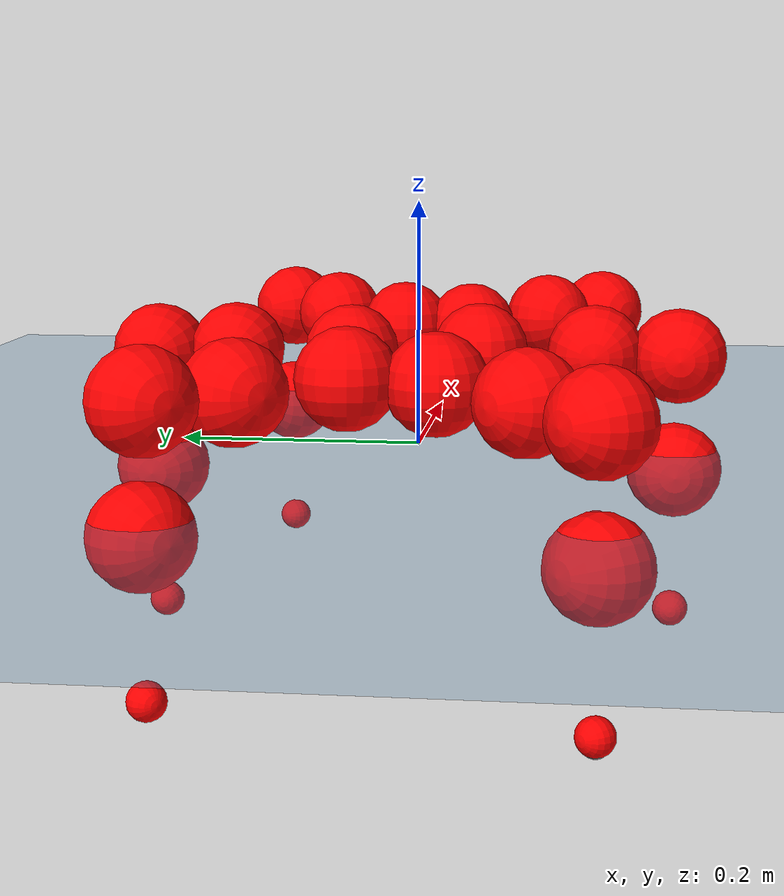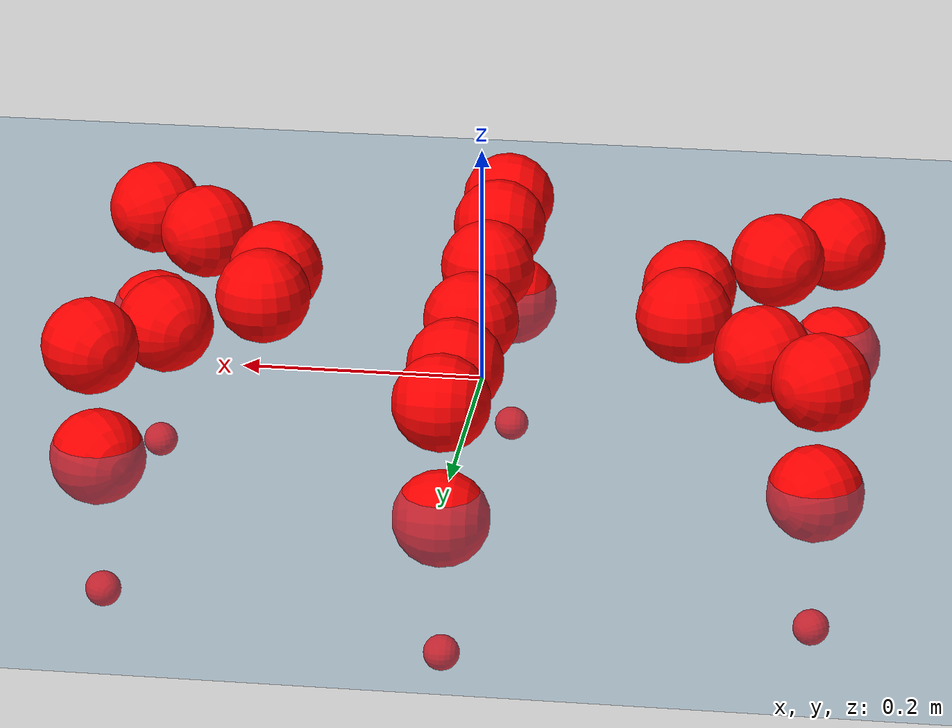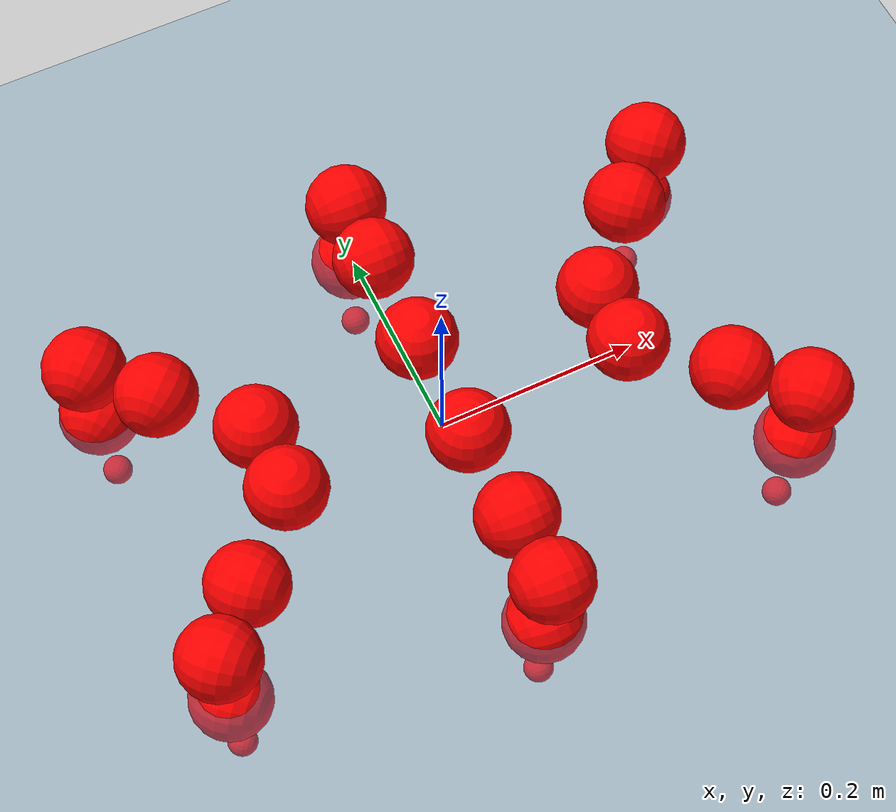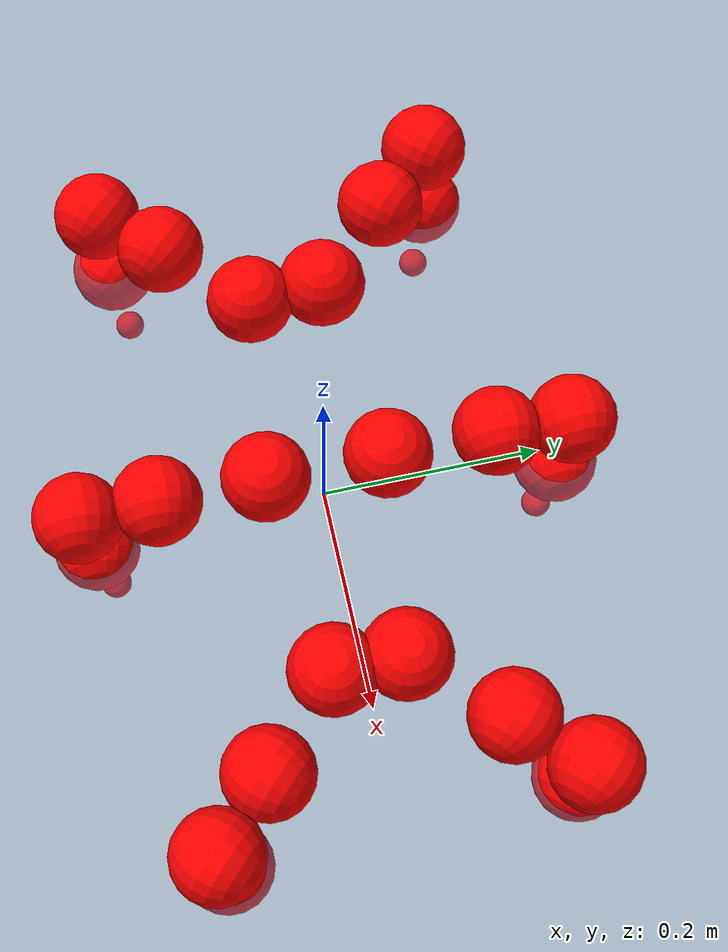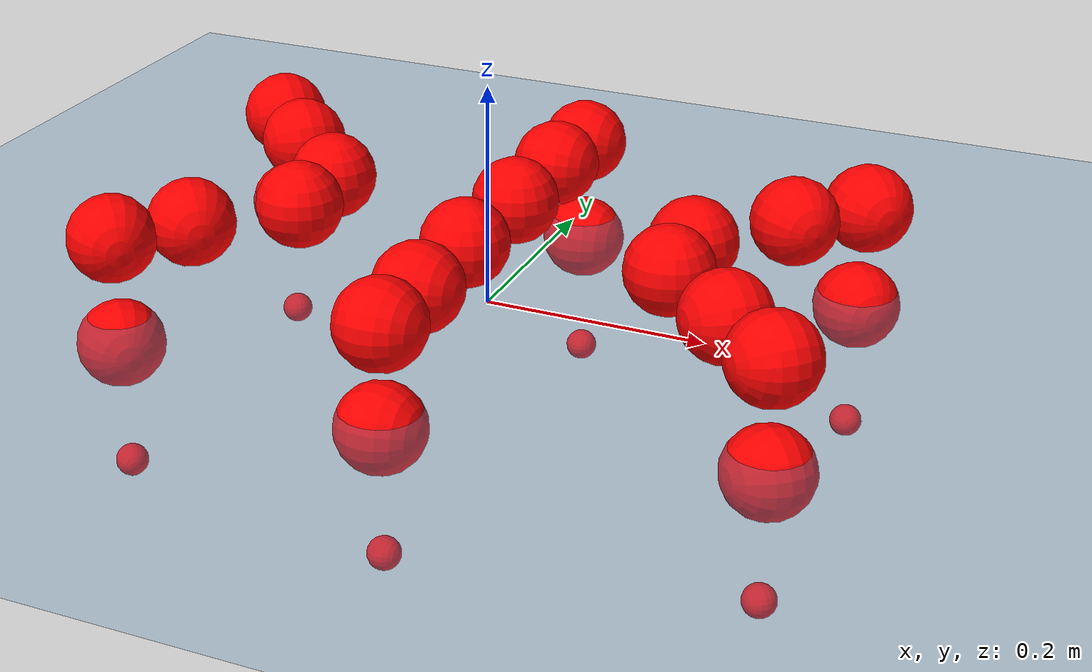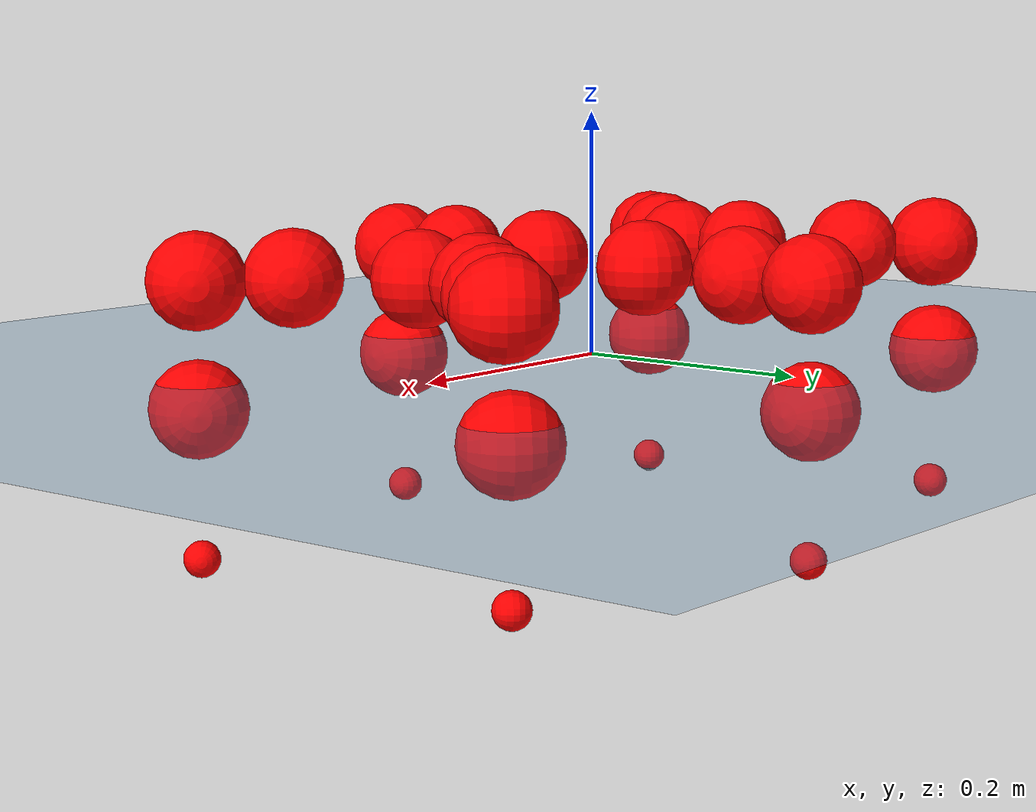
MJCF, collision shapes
<mujoco model="Golem">
  <compiler angle="radian" assetdir="assets" balanceinertia="true" inertiafromgeom="false"/>

  <option timestep="0.005" density="1.2" viscosity="2e-05"/>

  <size nkey="1"/>

  <visual>
    <quality shadowsize="8192"/>
    <map shadowclip="0.5"/>
  </visual>

  <default>
    <default class="/">
      <joint armature="0.01" damping="0.01" frictionloss="0.01"/>
      <geom contype="0" conaffinity="0" group="1" solref="-1000 -80"/>
      <site size="0.01 0.005 0.005" group="5"/>
      <general forcelimited="true" biastype="affine" gainprm="25" biasprm="0 -25 -0.5"/>
      <default class="visual">
        <geom type="mesh" group="2"/>
      </default>
      <default class="collision">
        <geom group="3"/>
      </default>
      <default class="foot">
        <geom size="0.01 0 0" condim="6" group="4" priority="1" solimp="0.015 1 0.01"/>
      </default>
      <default class="reward_collision_sphere">
        <geom group="5" rgba="1 0 0 1"/>
      </default>
    </default>
  </default>

  <asset>
    <texture type="skybox" colorspace="auto" name="//unnamed_texture_0" builtin="gradient" rgb1="0.95 0.95 0.95" rgb2="0.95 0.95 0.95" width="100" height="600"/>
    <texture type="2d" colorspace="auto" name="texplane" builtin="checker" rgb1="0.345 0.575 0.748" rgb2="0.345 0.575 0.748" markrgb="1 1 1" width="512" height="512"/>
    <material name="MatPlane" class="/" texture="texplane" texuniform="true" texrepeat="2 2" specular="0.9"/>
    <mesh name="body" class="/" file="body.stl" scale="0.001 0.001 0.001"/>
    <mesh name="coxa" class="/" file="coxa.stl" scale="0.001 0.001 0.001"/>
    <mesh name="femur" class="/" file="femur.stl" scale="0.001 0.001 0.001"/>
    <mesh name="tibia" class="/" file="tibia.stl" scale="0.001 0.001 0.001"/>
    <mesh name="tarsus" class="/" file="tarsus.stl" scale="0.001 0.001 0.001"/>
  </asset>

  <worldbody>
    <geom name="floor" class="/" size="100 100 0.125" type="plane" group="0" material="MatPlane"/>
    <light name="toplight_shadow" class="/" pos="0 0 5" dir="0.0990148 0.0990148 -0.990148" type="directional" ambient="0.04 0.04 0.04" diffuse="0.55 0.55 0.55" specular="0.12 0.12 0.12"/>
    <light name="toplight_fill" class="/" pos="0 0 5" dir="0.0990148 0.0990148 -0.990148" type="directional" castshadow="false" ambient="0.04 0.04 0.04" diffuse="0.3 0.3 0.3" specular="0.08 0.08 0.08"/>
    <body name="trunk" pos="0.00276512 0.000321531 0.00247373" quat="1 -5.27151e-05 0.000263712 -0.000415812">
      <inertial pos="-0.00220019 -0.00221974 -0.000115541" quat="1 -0.000836527 0.000258658 -6.54112e-05" mass="3.53916" diaginertia="0.0157527 0.00122739 0.0224726"/>
      <joint name="//unnamed_joint_0" type="free"/>
      <geom name="//unnamed_geom_1" class="/" pos="0 0 0.0749132" quat="1 0 0 0" type="mesh" rgba="0.9 0.9 0.9 1" mesh="body"/>
      <site name="imu" class="/" pos="0.140752 -0.0112478 0.115466" size="0.00975631"/>
      <camera name="track" class="/" pos="0 -1.31448 0" quat="0.707107 0.707107 0 0" mode="trackcom"/>
      <camera name="ego_camera" class="/" pos="0.142887 0 0.117052" quat="-0.5 -0.5 0.5 0.5"/>
      <body name="coxa_RR" pos="-0.193792 -0.0554508 0.0742555" quat="0.382832 -0.000207789 0.000215551 -0.923818">
        <inertial pos="-0.000274376 0.000690665 -0.000178288" quat="0.99991 0.000531502 -0.00542663 0.0122956" mass="0.191045" diaginertia="0.0164067 0.00119852 0.022"/>
        <joint name="coxa_joint_RR" class="/" pos="0 0 0" axis="-0.00042565 -0.000186249 -1" stiffness="0.00577088" range="-3.10625 3.14812" armature="0.00978791" damping="0.0125729" frictionloss="0.00928654"/>
        <geom name="//unnamed_geom_2" class="/" type="mesh" rgba="0.2 0.2 0.2 1" mesh="coxa"/>
        <geom name="//unnamed_geom_3" class="reward_collision_sphere" size="0.0390252" pos="-0.0329739 0 0"/>
        <body name="femur_RR" pos="0.0642914 0.00159805 -0.00109776" quat="0.499928 -0.499894 0.500094 0.500084">
          <inertial pos="-0.00161357 0.00113067 -0.00192486" quat="0.999999 0.000992666 -0.000287253 -0.000652111" mass="0.186571" diaginertia="0.0161082 0.00122822 0.0220331"/>
          <joint name="femur_joint_RR" class="/" pos="0 0 0" axis="0.00337662 -0.00108613 -0.999994" range="-3.18355 3.19019" armature="0.00873083" damping="0.00309913" frictionloss="0.00969379"/>
          <geom name="//unnamed_geom_4" class="/" type="mesh" rgba="0.9 0.9 0.9 1" mesh="femur"/>
          <geom name="//unnamed_geom_5" class="reward_collision_sphere" size="0.0390252"/>
          <body name="tibia_RR" pos="0.00364419 -0.0702845 0.00197252" quat="0.000216268 1 0.000187429 -2.40351e-06">
            <inertial pos="0.00261398 -0.00126075 0.00186586" quat="0.999914 0.00788034 0.00683198 -0.00789556" mass="0.188214" diaginertia="0.0167824 0.0012909 0.0224267"/>
            <joint name="tibia_joint_RR" class="/" pos="0 0 0" axis="0.00578942 0.00817243 0.99995" range="-3.19484 3.17046" armature="0.00897401" damping="0.0189466" frictionloss="0.0102921"/>
            <geom name="//unnamed_geom_6" class="/" type="mesh" rgba="0.2 0.2 0.2 1" mesh="tibia"/>
            <geom name="//unnamed_geom_7" class="reward_collision_sphere" size="0.0390252"/>
            <body name="tarsus_RR" pos="0.0994318 -0.000307465 -0.000803825" quat="1 7.76711e-05 1.53748e-05 7.35449e-06">
              <inertial pos="0.0683178 -0.00133083 -0.00111982" quat="0.494846 0.494862 0.498501 0.511602" mass="0.183416" diaginertia="0.0155576 0.00124519 0.0221153"/>
              <joint name="tarsus_joint_RR" class="/" pos="0 0 0" axis="0.00479832 -0.00177111 0.999987" range="-3.14875 3.13333" armature="0.0110979" damping="0.0403951" frictionloss="0.0110718"/>
              <geom name="//unnamed_geom_8" class="/" type="mesh" rgba="0.9 0.9 0.9 1" mesh="tarsus"/>
              <geom name="foot_1" class="foot" size="0.0106265" pos="0.123103 0 0" quat="0 -0.707107 0 0.707107"/>
              <geom name="//unnamed_geom_10" class="reward_collision_sphere" size="0.0390252"/>
              <geom name="//unnamed_geom_11" class="reward_collision_sphere" size="0.0146345" pos="0.118157 0 0"/>
              <site name="foot_1" class="foot" pos="0.123103 0 0" quat="0 -0.707107 0 0.707107" size="0.00975631"/>
            </body>
          </body>
        </body>
      </body>
      <body name="coxa_RM" pos="-0.00104892 -0.0842403 0.0758661" quat="0.707126 4.34505e-05 1.32656e-05 -0.707088">
        <inertial pos="-0.000394418 0.00291469 0.0028993" quat="0.999989 0.00137278 -0.00324905 -0.00308432" mass="0.185668" diaginertia="0.0164795 0.00127437 0.0225488"/>
        <joint name="coxa_joint_RM" class="/" pos="0 0 0" axis="-0.0101783 9.72651e-06 -0.999948" stiffness="0.00440306" range="-3.17435 3.08989" armature="0.0102233" damping="0.0293102" frictionloss="0.0103459"/>
        <geom name="//unnamed_geom_12" class="/" type="mesh" rgba="0.2 0.2 0.2 1" mesh="coxa"/>
        <geom name="//unnamed_geom_13" class="reward_collision_sphere" size="0.0390252" pos="-0.0329739 0 0"/>
        <body name="femur_RM" pos="0.0611185 0.00194118 -0.000395569" quat="0.499742 -0.499751 0.500004 0.500504">
          <inertial pos="0.000478922 -0.00282666 0.00160815" quat="0.999946 -0.00204823 0.00588006 0.0083451" mass="0.185584" diaginertia="0.0159406 0.00118224 0.0219658"/>
          <joint name="femur_joint_RM" class="/" pos="0 0 0" axis="-0.0107546 -0.00122586 -0.999941" range="-3.09716 3.08533" armature="0.00958057" damping="0.00213842" frictionloss="0.0101801"/>
          <geom name="//unnamed_geom_14" class="/" type="mesh" rgba="0.9 0.9 0.9 1" mesh="femur"/>
          <geom name="//unnamed_geom_15" class="reward_collision_sphere" size="0.0390252"/>
          <body name="tibia_RM" pos="0.00210695 -0.0678 0.000390043" quat="-0.000138011 1 0.000200112 -0.000134652">
            <inertial pos="0.000667018 -0.000112708 0.00283849" quat="0.999992 0.00315126 0.00184333 0.00132618" mass="0.183036" diaginertia="0.0161637 0.00122195 0.0220381"/>
            <joint name="tibia_joint_RM" class="/" pos="0 0 0" axis="0.00101546 0.00316101 0.999994" range="-3.15369 3.19481" armature="0.0111599" damping="0.00749301" frictionloss="0.0109882"/>
            <geom name="//unnamed_geom_16" class="/" type="mesh" rgba="0.2 0.2 0.2 1" mesh="tibia"/>
            <geom name="//unnamed_geom_17" class="reward_collision_sphere" size="0.0390252"/>
            <body name="tarsus_RM" pos="0.093714 -0.00142708 0.00292199" quat="0.999999 -0.000420618 -0.000888946 0.000385135">
              <inertial pos="0.0666573 0.00082499 -0.000980148" quat="0.500462 0.500137 0.499365 0.500036" mass="0.190414" diaginertia="0.017057 0.00123917 0.0224445"/>
              <joint name="tarsus_joint_RM" class="/" pos="0 0 0" axis="-0.00289703 -0.0081415 0.999963" range="-3.14313 3.15935" armature="0.00960511" damping="0.0102676" frictionloss="0.00996138"/>
              <geom name="//unnamed_geom_18" class="/" type="mesh" rgba="0.9 0.9 0.9 1" mesh="tarsus"/>
              <geom name="foot_2" class="foot" size="0.00925693" pos="0.123103 0 0" quat="0 -0.707107 0 0.707107"/>
              <geom name="//unnamed_geom_20" class="reward_collision_sphere" size="0.0390252"/>
              <geom name="//unnamed_geom_21" class="reward_collision_sphere" size="0.0146345" pos="0.118157 0 0"/>
              <site name="foot_2" class="foot" pos="0.123103 0 0" quat="0 -0.707107 0 0.707107" size="0.00975631"/>
            </body>
          </body>
        </body>
      </body>
      <body name="coxa_RF" pos="0.196684 -0.0530946 0.0742043" quat="0.923907 -7.897e-06 -0.000337508 -0.382617">
        <inertial pos="0.00095229 0.000636718 0.000432433" quat="0.999993 -0.00128821 -0.00294165 0.00189585" mass="0.187955" diaginertia="0.0159918 0.00125475 0.0218533"/>
        <joint name="coxa_joint_RF" class="/" pos="0 0 0" axis="-0.00156202 -0.00142625 -0.999998" range="-3.18704 3.12822" armature="0.00829968" damping="0.0209153" frictionloss="0.00975528"/>
        <geom name="//unnamed_geom_22" class="/" type="mesh" rgba="0.2 0.2 0.2 1" mesh="coxa"/>
        <geom name="//unnamed_geom_23" class="reward_collision_sphere" size="0.0390252" pos="-0.0329739 0 0"/>
        <body name="femur_RF" pos="0.0647562 0.00188451 0.0019844" quat="0.49999 -0.500067 0.499981 0.499962">
          <inertial pos="0.000440763 -0.00186512 -0.00141898" quat="0.999928 -0.0118941 0.000564464 -0.00147793" mass="0.179563" diaginertia="0.0153501 0.00119771 0.022264"/>
          <joint name="femur_joint_RF" class="/" pos="0 0 0" axis="-0.00207739 -0.00201977 -0.999996" range="-3.12434 3.15102" armature="0.0106968" damping="0" frictionloss="0.0110873"/>
          <geom name="//unnamed_geom_24" class="/" type="mesh" rgba="0.9 0.9 0.9 1" mesh="femur"/>
          <geom name="//unnamed_geom_25" class="reward_collision_sphere" size="0.0390252"/>
          <body name="tibia_RF" pos="0.00112576 -0.0740331 0.00208351" quat="-0.000127504 1 -8.88751e-05 4.43178e-05">
            <inertial pos="0.00257641 0.00234669 -0.00134884" quat="0.999926 0.0109666 0.00513817 0.000656459" mass="0.185619" diaginertia="0.015712 0.00118252 0.0222692"/>
            <joint name="tibia_joint_RF" class="/" pos="0 0 0" axis="0.00203952 0.000537588 0.999998" range="-3.13543 3.10123" armature="0.0109825" damping="0" frictionloss="0.00911812"/>
            <geom name="//unnamed_geom_26" class="/" type="mesh" rgba="0.2 0.2 0.2 1" mesh="tibia"/>
            <geom name="//unnamed_geom_27" class="reward_collision_sphere" size="0.0390252"/>
            <body name="tarsus_RF" pos="0.0991782 -0.000198884 -0.00226649" quat="1 -4.28246e-05 9.17541e-05 -1.70878e-05">
              <inertial pos="0.0669711 0.000393638 -0.00196737" quat="0.500074 0.496959 0.504975 0.497953" mass="0.183772" diaginertia="0.0161718 0.0012508 0.0222573"/>
              <joint name="tarsus_joint_RF" class="/" pos="0 0 0" axis="-0.00650824 0.00236993 0.999976" stiffness="0.0161415" range="-3.14492 3.13291" armature="0.00890995" damping="0.00781086" frictionloss="0.00967599"/>
              <geom name="//unnamed_geom_28" class="/" type="mesh" rgba="0.9 0.9 0.9 1" mesh="tarsus"/>
              <geom name="foot_3" class="foot" size="0.00877752" pos="0.123103 0 0" quat="0 -0.707107 0 0.707107"/>
              <geom name="//unnamed_geom_30" class="reward_collision_sphere" size="0.0390252"/>
              <geom name="//unnamed_geom_31" class="reward_collision_sphere" size="0.0146345" pos="0.118157 0 0"/>
              <site name="foot_3" class="foot" pos="0.123103 0 0" quat="0 -0.707107 0 0.707107" size="0.00975631"/>
            </body>
          </body>
        </body>
      </body>
      <body name="coxa_LR" pos="-0.195066 0.057093 0.0772075" quat="0.381998 -0.000648636 0.000923013 0.924162">
        <inertial pos="-0.00234719 0.000637835 0.00366003" quat="0.999977 -0.00604694 0.00219794 -0.00234819" mass="0.189365" diaginertia="0.0163851 0.00123367 0.0218696"/>
        <joint name="coxa_joint_LR" class="/" pos="0 0 0" axis="0.00947139 0.011498 -0.999889" range="-3.19342 3.1317" armature="0.00964876" damping="0.019664" frictionloss="0.00923473"/>
        <geom name="//unnamed_geom_32" class="/" type="mesh" rgba="0.2 0.2 0.2 1" mesh="coxa"/>
        <geom name="//unnamed_geom_33" class="reward_collision_sphere" size="0.0390252" pos="-0.0329739 0 0"/>
        <body name="femur_LR" pos="0.0645273 -0.000556189 -0.000100162" quat="0.499659 -0.499396 0.500291 0.500653">
          <inertial pos="0.00270556 -0.000270043 0.00187315" quat="0.999999 0.000750323 -0.000652286 0.00103577" mass="0.177358" diaginertia="0.0157085 0.00121037 0.0212822"/>
          <joint name="femur_joint_LR" class="/" pos="0 0 0" axis="-0.013065 -0.00685261 0.999891" range="-3.16261 3.1115" armature="0.0108628" damping="0" frictionloss="0.0095274"/>
          <geom name="//unnamed_geom_34" class="/" type="mesh" rgba="0.9 0.9 0.9 1" mesh="femur"/>
          <geom name="//unnamed_geom_35" class="reward_collision_sphere" size="0.0390252"/>
          <body name="tibia_LR" pos="-0.00163185 -0.0719308 -0.00229572" quat="0.00114328 0.999999 -0.00046493 -0.000611917">
            <inertial pos="-0.000182312 0.000801412 0.00182783" quat="0.999922 -0.00157254 0.0122329 0.00175372" mass="0.184025" diaginertia="0.0162734 0.00125342 0.0218049"/>
            <joint name="tibia_joint_LR" class="/" pos="0 0 0" axis="-0.00181512 0.00390091 -0.999991" range="-3.16675 3.18933" armature="0.00863889" damping="0.0247707" frictionloss="0.0109175"/>
            <geom name="//unnamed_geom_36" class="/" type="mesh" rgba="0.2 0.2 0.2 1" mesh="tibia"/>
            <geom name="//unnamed_geom_37" class="reward_collision_sphere" size="0.0390252"/>
            <body name="tarsus_LR" pos="0.0945726 0.00165448 0.00320726" quat="1 -2.6728e-05 0.000391562 4.50503e-05">
              <inertial pos="0.0657048 -6.44404e-05 -0.000256535" quat="0.505451 0.498305 0.491434 0.504683" mass="0.18846" diaginertia="0.0169061 0.00128235 0.0232814"/>
              <joint name="tarsus_joint_LR" class="/" pos="0 0 0" axis="0.000118072 -0.000131993 -1" stiffness="0.0036844" range="-3.15274 3.12584" armature="0.00970306" damping="0.0345676" frictionloss="0.00956758"/>
              <geom name="//unnamed_geom_38" class="/" type="mesh" rgba="0.9 0.9 0.9 1" mesh="tarsus"/>
              <geom name="foot_4" class="foot" size="0.00958065" pos="0.123103 0 0" quat="0.707107 0 -0.707107 0"/>
              <geom name="//unnamed_geom_40" class="reward_collision_sphere" size="0.0390252"/>
              <geom name="//unnamed_geom_41" class="reward_collision_sphere" size="0.0146345" pos="0.118157 0 0"/>
              <site name="foot_4" class="foot" pos="0.123103 0 0" quat="0.707107 0 -0.707107 0" size="0.00975631"/>
            </body>
          </body>
        </body>
      </body>
      <body name="coxa_LM" pos="-0.00119095 0.088635 0.0735436" quat="0.706966 -0.000375562 -0.00116021 0.707247">
        <inertial pos="-0.000607051 -0.00250301 -0.00163006" quat="1 -0.000105054 0.000350086 0.000210761" mass="0.18694" diaginertia="0.0158747 0.00123532 0.0220548"/>
        <joint name="coxa_joint_LM" class="/" pos="0 0 0" axis="0.00206625 -0.00237977 -0.999995" range="-3.14255 3.13691" armature="0.00967312" damping="0.0148178" frictionloss="0.00864927"/>
        <geom name="//unnamed_geom_42" class="/" type="mesh" rgba="0.2 0.2 0.2 1" mesh="coxa"/>
        <geom name="//unnamed_geom_43" class="reward_collision_sphere" size="0.0390252" pos="-0.0329739 0 0"/>
        <body name="femur_LM" pos="0.0632589 9.85532e-05 0.000665328" quat="0.500119 -0.499995 0.499981 0.499904">
          <inertial pos="0.00158924 0.00252346 0.000275218" quat="0.999989 7.44488e-05 0.00164972 -0.00439804" mass="0.186041" diaginertia="0.0166152 0.00122349 0.0212307"/>
          <joint name="femur_joint_LM" class="/" pos="0 0 0" axis="0.00100652 0.0109794 0.999939" stiffness="0.00237911" range="-3.12789 3.10819" armature="0.0112581" damping="0" frictionloss="0.0107993"/>
          <geom name="//unnamed_geom_44" class="/" type="mesh" rgba="0.9 0.9 0.9 1" mesh="femur"/>
          <geom name="//unnamed_geom_45" class="reward_collision_sphere" size="0.0390252"/>
          <body name="tibia_LM" pos="0.00206449 -0.0670113 -0.001943" quat="0.000140177 1 -8.80319e-05 9.07311e-05">
            <inertial pos="-0.00226253 0.000244243 -0.00111403" quat="0.99998 0.00352963 0.00192163 -0.00484501" mass="0.188852" diaginertia="0.0158166 0.00124474 0.0216682"/>
            <joint name="tibia_joint_LM" class="/" pos="0 0 0" axis="0.00638181 0.00372299 -0.999973" stiffness="0.00553691" range="-3.12345 3.13168" armature="0.0110677" damping="0.00446186" frictionloss="0.0097603"/>
            <geom name="//unnamed_geom_46" class="/" type="mesh" rgba="0.2 0.2 0.2 1" mesh="tibia"/>
            <geom name="//unnamed_geom_47" class="reward_collision_sphere" size="0.0390252"/>
            <body name="tarsus_LM" pos="0.0993309 0.000152824 0.000205387" quat="0.999999 7.05094e-05 -0.000183101 -0.0012338">
              <inertial pos="0.0627605 -0.00102216 -0.00101382" quat="0.50094 0.49831 0.501378 0.499367" mass="0.181981" diaginertia="0.0153551 0.00116704 0.0207015"/>
              <joint name="tarsus_joint_LM" class="/" pos="0 0 0" axis="0.00185977 0.00173443 -0.999997" stiffness="0.0111278" range="-3.12366 3.12796" armature="0.00837622" damping="0.0296325" frictionloss="0.00989736"/>
              <geom name="//unnamed_geom_48" class="/" type="mesh" rgba="0.9 0.9 0.9 1" mesh="tarsus"/>
              <geom name="foot_5" class="foot" size="0.00952624" pos="0.123103 0 0" quat="0.707107 0 -0.707107 0"/>
              <geom name="//unnamed_geom_50" class="reward_collision_sphere" size="0.0390252"/>
              <geom name="//unnamed_geom_51" class="reward_collision_sphere" size="0.0146345" pos="0.118157 0 0"/>
              <site name="foot_5" class="foot" pos="0.123103 0 0" quat="0.707107 0 -0.707107 0" size="0.00975631"/>
            </body>
          </body>
        </body>
      </body>
      <body name="coxa_LF" pos="0.19677 0.0546371 0.0750102" quat="0.923885 1.04113e-05 1.22747e-05 0.38267">
        <inertial pos="0.00267101 -0.00196188 0.00257746" quat="0.999981 0.00463154 0.00384297 0.00111768" mass="0.187282" diaginertia="0.0156988 0.0012429 0.0225226"/>
        <joint name="coxa_joint_LF" class="/" pos="0 0 0" axis="0.0163039 0.0134752 -0.999776" stiffness="0.0174291" range="-3.14244 3.1343" armature="0.00940613" damping="0.00773391" frictionloss="0.0104292"/>
        <geom name="//unnamed_geom_52" class="/" type="mesh" rgba="0.2 0.2 0.2 1" mesh="coxa"/>
        <geom name="//unnamed_geom_53" class="reward_collision_sphere" size="0.0390252" pos="-0.0329739 0 0"/>
        <body name="femur_LF" pos="0.0655855 0.00395374 0.00191147" quat="0.500248 -0.4995 0.500199 0.500053">
          <inertial pos="0.000622838 -0.00300159 -0.000342918" quat="0.999911 -0.000121226 -0.000889203 0.0133202" mass="0.180396" diaginertia="0.0161085 0.00123033 0.0225096"/>
          <joint name="femur_joint_LF" class="/" pos="0 0 0" axis="-0.0020241 0.0101712 0.999946" range="-3.13944 3.11157" armature="0.0108374" damping="0.0153979" frictionloss="0.0093853"/>
          <geom name="//unnamed_geom_54" class="/" type="mesh" rgba="0.9 0.9 0.9 1" mesh="femur"/>
          <geom name="//unnamed_geom_55" class="reward_collision_sphere" size="0.0390252"/>
          <body name="tibia_LF" pos="-0.000454896 -0.0732258 0.00102766" quat="-0.000739328 0.999999 0.000497423 0.000696474">
            <inertial pos="-0.00113431 0.00259983 0.000336635" quat="0.999989 0.000353725 0.00372526 0.00297246" mass="0.185759" diaginertia="0.0161507 0.00120743 0.0220262"/>
            <joint name="tibia_joint_LF" class="/" pos="0 0 0" axis="-0.00244638 0.00482038 -0.999985" stiffness="0.00355269" range="-3.19459 3.17995" armature="0.00979656" damping="0.00603807" frictionloss="0.0109822"/>
            <geom name="//unnamed_geom_56" class="/" type="mesh" rgba="0.2 0.2 0.2 1" mesh="tibia"/>
            <geom name="//unnamed_geom_57" class="reward_collision_sphere" size="0.0390252"/>
            <body name="tarsus_LF" pos="0.0955688 -0.000752833 -0.00426783" quat="0.999999 -0.00135174 0.000393971 -0.000485067">
              <inertial pos="0.064886 0.00342466 0.000864066" quat="0.499185 0.500298 0.499798 0.500718" mass="0.179442" diaginertia="0.0152085 0.00116521 0.0214527"/>
              <joint name="tarsus_joint_LF" class="/" pos="0 0 0" axis="0.00970698 0.0133304 -0.999864" stiffness="0.0268929" range="-3.14089 3.13398" armature="0.00985337" damping="0.00561389" frictionloss="0.0100485"/>
              <geom name="//unnamed_geom_58" class="/" type="mesh" rgba="0.9 0.9 0.9 1" mesh="tarsus"/>
              <geom name="foot_6" class="foot" size="0.00986033" pos="0.123103 0 0" quat="0.707107 0 -0.707107 0"/>
              <geom name="//unnamed_geom_60" class="reward_collision_sphere" size="0.0390252"/>
              <geom name="//unnamed_geom_61" class="reward_collision_sphere" size="0.0146345" pos="0.118157 0 0"/>
              <site name="foot_6" class="foot" pos="0.123103 0 0" quat="0.707107 0 -0.707107 0" size="0.00975631"/>
            </body>
          </body>
        </body>
      </body>
    </body>
  </worldbody>

  <contact>
    <pair class="/" geom1="floor" geom2="foot_1" name="//unnamed_contact_0"/>
    <pair class="/" geom1="floor" geom2="foot_2" name="//unnamed_contact_1"/>
    <pair class="/" geom1="floor" geom2="foot_3" name="//unnamed_contact_2"/>
    <pair class="/" geom1="floor" geom2="foot_4" name="//unnamed_contact_3"/>
    <pair class="/" geom1="floor" geom2="foot_5" name="//unnamed_contact_4"/>
    <pair class="/" geom1="floor" geom2="foot_6" name="//unnamed_contact_5"/>
  </contact>

  <actuator>
    <general name="coxa_joint_RR" class="/" joint="coxa_joint_RR" forcerange="-7.86967 7.86967" gainprm="23.8228" biasprm="0 -23.8228 -0.513266"/>
    <general name="femur_joint_RR" class="/" joint="femur_joint_RR" forcerange="-6.39642 6.39642" gainprm="23.8228" biasprm="0 -23.8228 -0.513266"/>
    <general name="tibia_joint_RR" class="/" joint="tibia_joint_RR" forcerange="-7.27441 7.27441" gainprm="23.8228" biasprm="0 -23.8228 -0.513266"/>
    <general name="tarsus_joint_RR" class="/" joint="tarsus_joint_RR" forcerange="-6.51199 6.51199" gainprm="23.8228" biasprm="0 -23.8228 -0.513266"/>
    <general name="coxa_joint_RM" class="/" joint="coxa_joint_RM" forcerange="-7.06734 7.06734" gainprm="23.8228" biasprm="0 -23.8228 -0.513266"/>
    <general name="femur_joint_RM" class="/" joint="femur_joint_RM" forcerange="-6.91718 6.91718" gainprm="23.8228" biasprm="0 -23.8228 -0.513266"/>
    <general name="tibia_joint_RM" class="/" joint="tibia_joint_RM" forcerange="-7.45496 7.45496" gainprm="23.8228" biasprm="0 -23.8228 -0.513266"/>
    <general name="tarsus_joint_RM" class="/" joint="tarsus_joint_RM" forcerange="-6.47178 6.47178" gainprm="23.8228" biasprm="0 -23.8228 -0.513266"/>
    <general name="coxa_joint_RF" class="/" joint="coxa_joint_RF" forcerange="-7.29587 7.29587" gainprm="23.8228" biasprm="0 -23.8228 -0.513266"/>
    <general name="femur_joint_RF" class="/" joint="femur_joint_RF" forcerange="-6.78704 6.78704" gainprm="23.8228" biasprm="0 -23.8228 -0.513266"/>
    <general name="tibia_joint_RF" class="/" joint="tibia_joint_RF" forcerange="-7.85026 7.85026" gainprm="23.8228" biasprm="0 -23.8228 -0.513266"/>
    <general name="tarsus_joint_RF" class="/" joint="tarsus_joint_RF" forcerange="-6.80628 6.80628" gainprm="23.8228" biasprm="0 -23.8228 -0.513266"/>
    <general name="coxa_joint_LR" class="/" joint="coxa_joint_LR" forcerange="-6.84765 6.84765" gainprm="23.8228" biasprm="0 -23.8228 -0.513266"/>
    <general name="femur_joint_LR" class="/" joint="femur_joint_LR" forcerange="-7.85635 7.85635" gainprm="23.8228" biasprm="0 -23.8228 -0.513266"/>
    <general name="tibia_joint_LR" class="/" joint="tibia_joint_LR" forcerange="-7.79226 7.79226" gainprm="23.8228" biasprm="0 -23.8228 -0.513266"/>
    <general name="tarsus_joint_LR" class="/" joint="tarsus_joint_LR" forcerange="-7.26976 7.26976" gainprm="23.8228" biasprm="0 -23.8228 -0.513266"/>
    <general name="coxa_joint_LM" class="/" joint="coxa_joint_LM" forcerange="-7.86265 7.86265" gainprm="23.8228" biasprm="0 -23.8228 -0.513266"/>
    <general name="femur_joint_LM" class="/" joint="femur_joint_LM" forcerange="-7.01058 7.01058" gainprm="23.8228" biasprm="0 -23.8228 -0.513266"/>
    <general name="tibia_joint_LM" class="/" joint="tibia_joint_LM" forcerange="-7.14883 7.14883" gainprm="23.8228" biasprm="0 -23.8228 -0.513266"/>
    <general name="tarsus_joint_LM" class="/" joint="tarsus_joint_LM" forcerange="-6.59748 6.59748" gainprm="23.8228" biasprm="0 -23.8228 -0.513266"/>
    <general name="coxa_joint_LF" class="/" joint="coxa_joint_LF" forcerange="-7.83625 7.83625" gainprm="23.8228" biasprm="0 -23.8228 -0.513266"/>
    <general name="femur_joint_LF" class="/" joint="femur_joint_LF" forcerange="-6.90704 6.90704" gainprm="23.8228" biasprm="0 -23.8228 -0.513266"/>
    <general name="tibia_joint_LF" class="/" joint="tibia_joint_LF" forcerange="-6.86206 6.86206" gainprm="23.8228" biasprm="0 -23.8228 -0.513266"/>
    <general name="tarsus_joint_LF" class="/" joint="tarsus_joint_LF" forcerange="-7.13351 7.13351" gainprm="23.8228" biasprm="0 -23.8228 -0.513266"/>
  </actuator>

  <sensor>
    <gyro site="imu" name="imu_angular_velocity"/>
    <velocimeter site="imu" name="imu_linear_velocity"/>
    <framelinvel objtype="site" objname="foot_1" name="foot_1_global_linear_velocity"/>
    <framelinvel objtype="site" objname="foot_2" name="foot_2_global_linear_velocity"/>
    <framelinvel objtype="site" objname="foot_3" name="foot_3_global_linear_velocity"/>
    <framelinvel objtype="site" objname="foot_4" name="foot_4_global_linear_velocity"/>
    <framelinvel objtype="site" objname="foot_5" name="foot_5_global_linear_velocity"/>
    <framelinvel objtype="site" objname="foot_6" name="foot_6_global_linear_velocity"/>
  </sensor>

  <keyframe>
    <key name="home" qpos="0 0 0.1457 1 0 0 0 0 0 0 0 0 0 0 0 0 0 0 0 0 0 0 0 0 0 0 0 0 0 0 0"/>
  </keyframe>
</mujoco>
